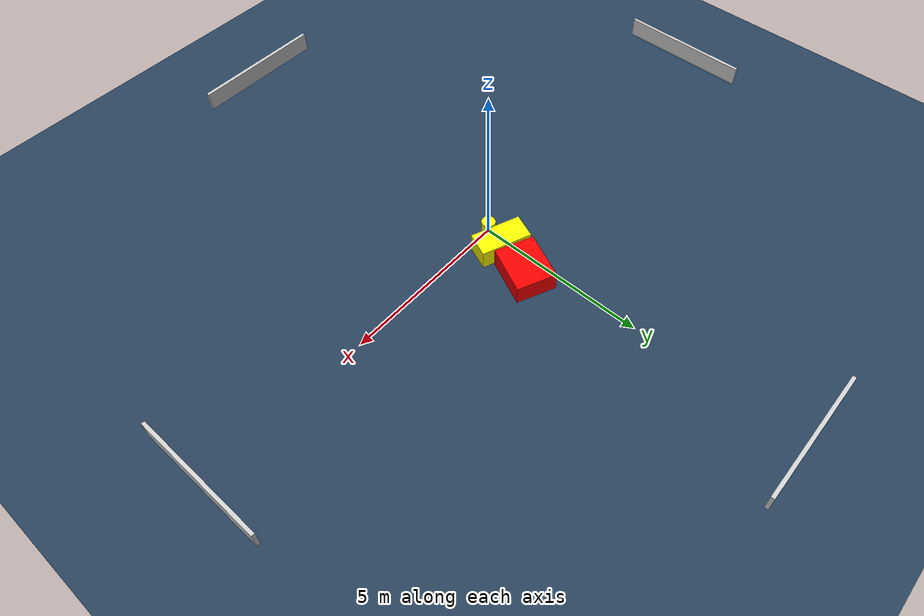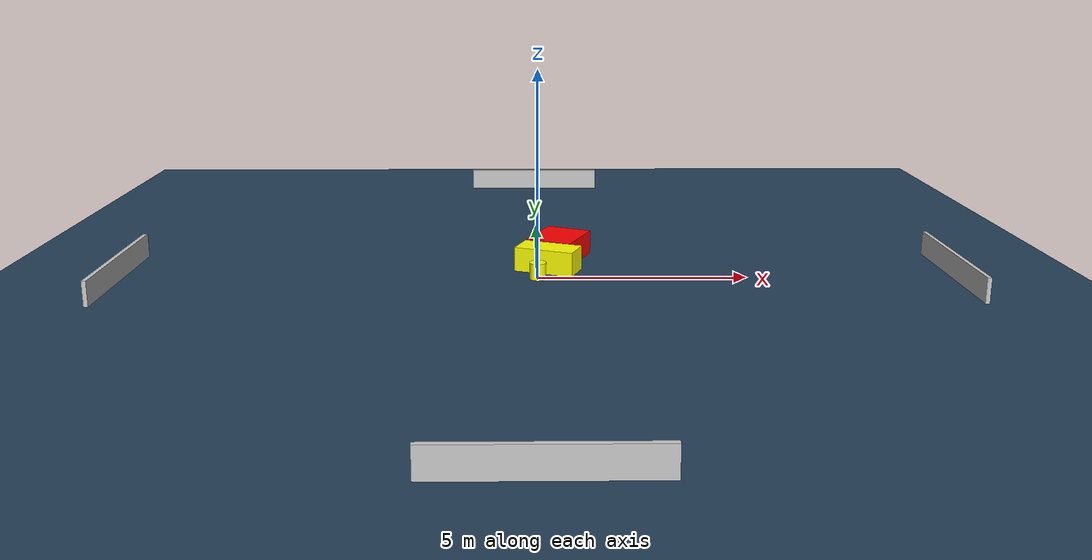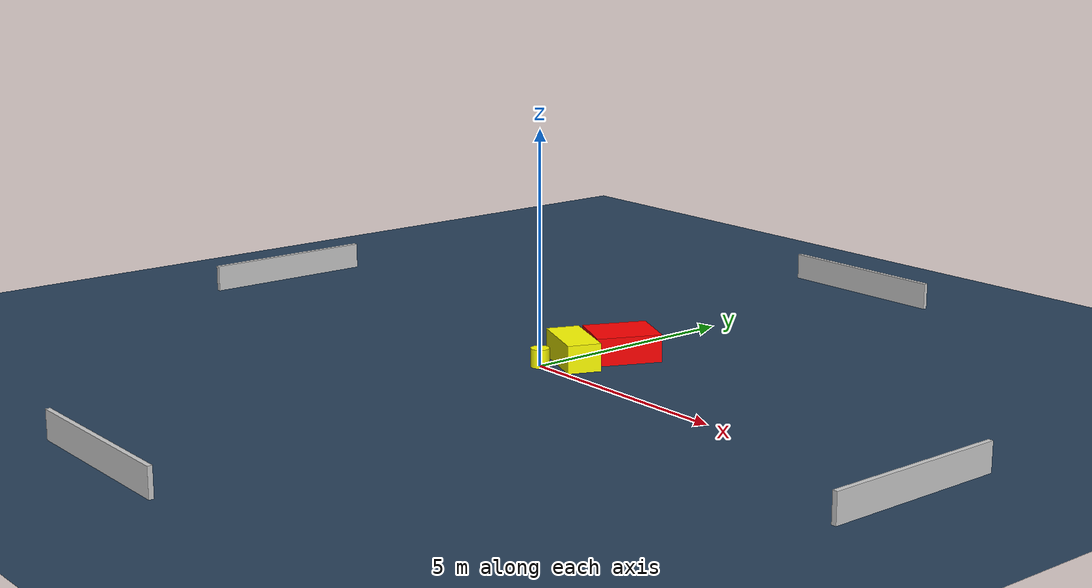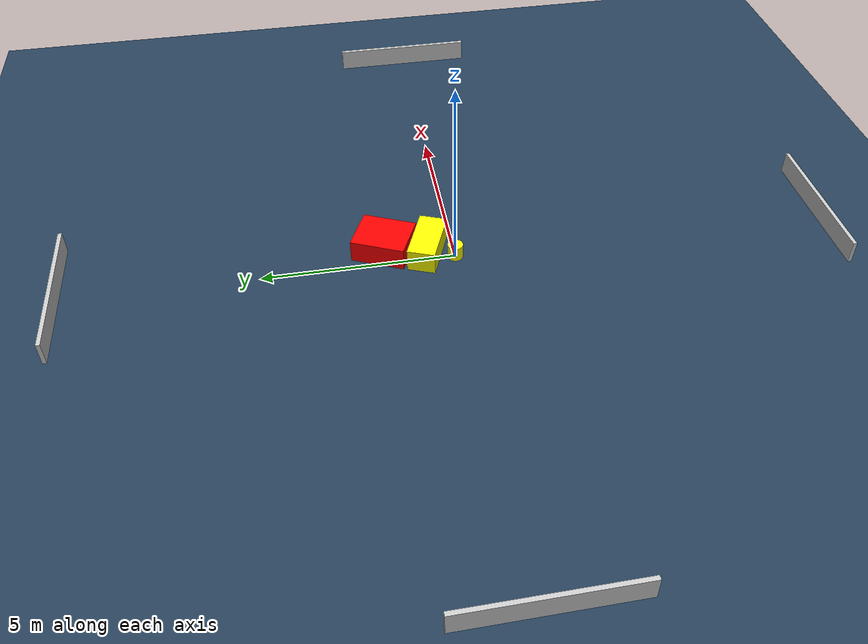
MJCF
<?xml version="1.0" ?>
<mujoco model="generated_environment">
  <option timestep="0.01" integrator="RK4" cone="elliptic"/>
  <default>
    <geom density="1"/>
  </default>
  <asset>
    <texture builtin="gradient" height="3072" name="skybox" rgb1="0.3 0.5 0.7" rgb2="0 0 0" type="skybox" width="512"/>
    <texture builtin="checker" height="300" name="groundplane" rgb1="0.2 0.3 0.4" rgb2="0.1 0.2 0.3" type="2d" width="300"/>
    <material name="groundplane" reflectance="0.2" texrepeat="5 5" texture="groundplane"/>
  </asset>
  <worldbody>
    <light dir="0 0 -1" directional="true" pos="0 0 1.5"/>
    <geom condim="3" friction="0.5 0.005 0.001" material="groundplane" name="floor" pos="0 0 0" size="0 0 0.05" type="plane"/>
    <body name="walls">
      <geom name="wall_1" condim="4" pos="-10.0 0.0 0.3" rgba="0.800000011920929 0.800000011920929 0.800000011920929 1.0" size="0.05 2.0 0.3" type="box"/>
      <geom name="wall_2" condim="4" pos="10.0 0.0 0.3" rgba="0.800000011920929 0.800000011920929 0.800000011920929 1.0" size="0.05 2.0 0.3" type="box"/>
      <geom name="wall_3" condim="4" pos="0.0 -10.0 0.3" rgba="0.800000011920929 0.800000011920929 0.800000011920929 1.0" size="2.0 0.05 0.3" type="box"/>
      <geom name="wall_4" condim="4" pos="0.0 10.0 0.3" rgba="0.800000011920929 0.800000011920929 0.800000011920929 1.0" size="2.0 0.05 0.3" type="box"/>
    </body>
    <body name="robot">
      <joint name="joint_x" type="slide" pos="0 0 0" axis="1 0 0"/>
      <joint name="joint_y" type="slide" pos="0 0 0" axis="0 1 0"/>
      <geom name="robot" type="cylinder" pos="0.0 0.0 0.2" size="0.2 0.2 0.0" mass="5.0" friction="1.0 0.005 0.0001" condim="4" rgba="1.0 1.0 0.0 1.0"/>
    </body>
    <body name="obstacle_1_movable">
      <geom name="obstacle_1_movable" condim="4" pos="0.26535306753220056 0.6862263982122353 0.3" euler="0 0 248.35369656849983" friction="0.0 0.005 0.001" rgba="1.0 1.0 0.0 1.0" size="0.3635255621916063 0.7402165740577207 0.3" type="box" mass="0.1"/>
      <joint type="free"/>
    </body>
    <body name="obstacle_2_static">
      <geom name="obstacle_2_static" condim="4" pos="0.5562554487149459 1.7868528354062443 0.3" euler="0 0 245.63695075894861" friction="0.0 0.005 0.001" rgba="1.0 0.0 0.0 1.0" size="0.7088328715605872 0.5815315880488071 0.3" type="box"/>
    </body>
  </worldbody>
  <actuator>
    <motor name="actuator_x" joint="joint_x" gear="1" ctrlrange="-1 1"/>
    <motor name="actuator_y" joint="joint_y" gear="1" ctrlrange="-1 1"/>
  </actuator>
</mujoco>
